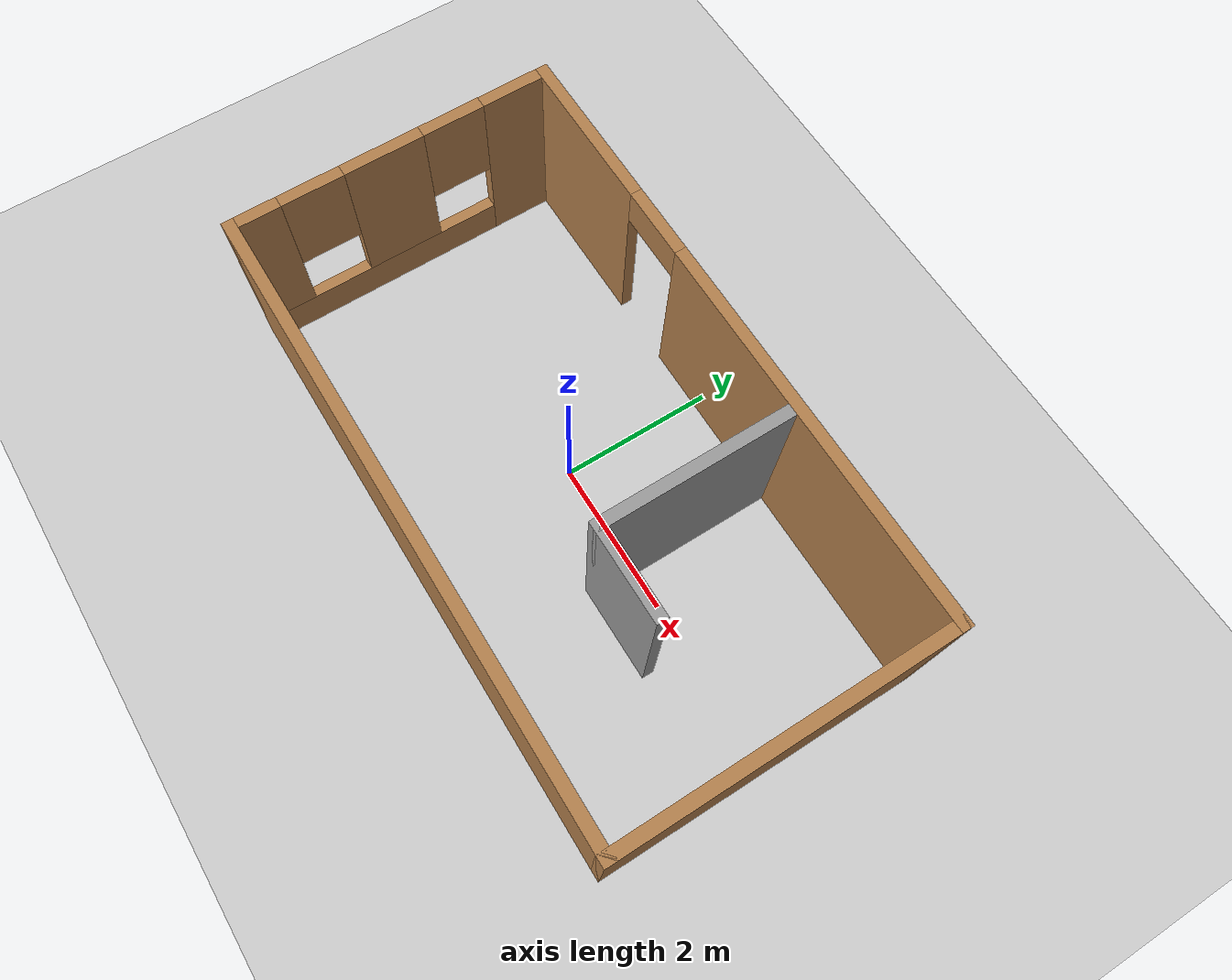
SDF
<sdf version='1.4'>
  <world name='default'>
    <!-- A global light source -->
    <include>
      <uri>model://sun</uri>
    </include>

    <!-- A ground plane -->
    <include>
      <uri>model://ground_plane</uri>
    </include>

    <physics type="ode">
      <real_time_update_rate>1000.0</real_time_update_rate>
      <max_step_size>0.001</max_step_size>
      <real_time_factor>1</real_time_factor>
      <ode>
        <solver>
          <type>quick</type>
          <iters>150</iters>
          <precon_iters>0</precon_iters>
          <sor>1.400000</sor>
          <use_dynamic_moi_rescaling>1</use_dynamic_moi_rescaling>
        </solver>
        <constraints>
          <cfm>0.00001</cfm>
          <erp>0.2</erp>
          <contact_max_correcting_vel>2000.000000</contact_max_correcting_vel>
          <contact_surface_layer>0.01000</contact_surface_layer>
        </constraints>
      </ode>
    </physics>

    <!-- Load world -->
    <include>
      <uri>model://pfm</uri>
    </include>

    <scene>
      <ambient>0.4 0.4 0.4 1</ambient>
      <background>0.7 0.7 0.7 1</background>
      <shadows>true</shadows>
    </scene>

    <gui fullscreen='0'>
      <camera name='user_camera'>
        <pose>0.8 0.0 12.0 0 1.5708 0</pose>
        <view_controller>orbit</view_controller>
      </camera>
    </gui>
  </world>
</sdf>

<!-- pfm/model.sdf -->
<sdf version='1.6'>
  <model name='pfm'>
    <pose frame=''>0.245131 -0.125376 0 0 -0 0</pose>
    <link name='Wall_10'>
      <collision name='Wall_10_Collision'>
        <geometry>
          <box>
            <size>1.25 0.15 2.5</size>
          </box>
        </geometry>
        <pose frame=''>0 0 1.25 0 -0 0</pose>
      </collision>
      <visual name='Wall_10_Visual'>
        <pose frame=''>0 0 1.25 0 -0 0</pose>
        <geometry>
          <box>
            <size>1.25 0.15 2.5</size>
          </box>
        </geometry>
        <material>
          <script>
            <uri>file://media/materials/scripts/gazebo.material</uri>
            <name>Gazebo/Grey</name>
          </script>
          <ambient>1 1 1 1</ambient>
        </material>
      </visual>
      <pose frame=''>1.75396 -0.420681 0 0 -0 0</pose>
    </link>
    <link name='Wall_3'>
      <pose frame=''>-3.925 0 0 0 0 -1.5708</pose>
      <visual name='Wall_3_Visual_0'>
        <pose frame=''>-1.65392 0 1.25 0 -0 0</pose>
        <geometry>
          <box>
            <size>0.942155 0.15 2.5</size>
          </box>
        </geometry>
        <material>
          <script>
            <uri>file://media/materials/scripts/gazebo.material</uri>
            <name>Gazebo/Wood</name>
          </script>
          <ambient>1 1 1 1</ambient>
        </material>
      </visual>
      <collision name='Wall_3_Collision_0'>
        <geometry>
          <box>
            <size>0.942155 0.15 2.5</size>
          </box>
        </geometry>
        <pose frame=''>-1.65392 0 1.25 0 -0 0</pose>
      </collision>
      <visual name='Wall_3_Visual_1'>
        <pose frame=''>0.471078 0 0.25 0 -0 0</pose>
        <geometry>
          <box>
            <size>3.30784 0.15 0.5</size>
          </box>
        </geometry>
        <material>
          <script>
            <uri>file://media/materials/scripts/gazebo.material</uri>
            <name>Gazebo/Wood</name>
          </script>
          <ambient>1 1 1 1</ambient>
        </material>
      </visual>
      <collision name='Wall_3_Collision_1'>
        <geometry>
          <box>
            <size>3.30784 0.15 0.5</size>
          </box>
        </geometry>
        <pose frame=''>0.471078 0 0.25 0 -0 0</pose>
      </collision>
      <visual name='Wall_3_Visual_2'>
        <pose frame=''>0.132323 0 1.5 0 -0 0</pose>
        <geometry>
          <box>
            <size>1.03034 0.15 2</size>
          </box>
        </geometry>
        <material>
          <script>
            <uri>file://media/materials/scripts/gazebo.material</uri>
            <name>Gazebo/Wood</name>
          </script>
          <ambient>1 1 1 1</ambient>
        </material>
      </visual>
      <collision name='Wall_3_Collision_2'>
        <geometry>
          <box>
            <size>1.03034 0.15 2</size>
          </box>
        </geometry>
        <pose frame=''>0.132323 0 1.5 0 -0 0</pose>
      </collision>
      <visual name='Wall_3_Visual_3'>
        <pose frame=''>1.78625 0 1.5 0 -0 0</pose>
        <geometry>
          <box>
            <size>0.67751 0.15 2</size>
          </box>
        </geometry>
        <material>
          <script>
            <uri>file://media/materials/scripts/gazebo.material</uri>
            <name>Gazebo/Wood</name>
          </script>
          <ambient>1 1 1 1</ambient>
        </material>
      </visual>
      <collision name='Wall_3_Collision_3'>
        <geometry>
          <box>
            <size>0.67751 0.15 2</size>
          </box>
        </geometry>
        <pose frame=''>1.78625 0 1.5 0 -0 0</pose>
      </collision>
      <visual name='Wall_3_Visual_4'>
        <pose frame=''>-0.782845 0 1.9 0 -0 0</pose>
        <geometry>
          <box>
            <size>0.8 0.15 1.2</size>
          </box>
        </geometry>
        <material>
          <script>
            <uri>file://media/materials/scripts/gazebo.material</uri>
            <name>Gazebo/Wood</name>
          </script>
          <ambient>1 1 1 1</ambient>
        </material>
      </visual>
      <collision name='Wall_3_Collision_4'>
        <geometry>
          <box>
            <size>0.8 0.15 1.2</size>
          </box>
        </geometry>
        <pose frame=''>-0.782845 0 1.9 0 -0 0</pose>
      </collision>
      <visual name='Wall_3_Visual_5'>
        <pose frame=''>1.04749 0 1.9 0 -0 0</pose>
        <geometry>
          <box>
            <size>0.8 0.15 1.2</size>
          </box>
        </geometry>
        <material>
          <script>
            <uri>file://media/materials/scripts/gazebo.material</uri>
            <name>Gazebo/Wood</name>
          </script>
          <ambient>1 1 1 1</ambient>
        </material>
      </visual>
      <collision name='Wall_3_Collision_5'>
        <geometry>
          <box>
            <size>0.8 0.15 1.2</size>
          </box>
        </geometry>
        <pose frame=''>1.04749 0 1.9 0 -0 0</pose>
      </collision>
    </link>
    <link name='Wall_4'>
      <collision name='Wall_4_Collision'>
        <geometry>
          <box>
            <size>8 0.15 2.5</size>
          </box>
        </geometry>
        <pose frame=''>0 0 1.25 0 -0 0</pose>
      </collision>
      <visual name='Wall_4_Visual'>
        <pose frame=''>0 0 1.25 0 -0 0</pose>
        <geometry>
          <box>
            <size>8 0.15 2.5</size>
          </box>
        </geometry>
        <material>
          <script>
            <uri>file://media/materials/scripts/gazebo.material</uri>
            <name>Gazebo/Wood</name>
          </script>
          <ambient>1 1 1 1</ambient>
        </material>
      </visual>
      <pose frame=''>0 -2.05 0 0 -0 0</pose>
    </link>
    <link name='Wall_5'>
      <collision name='Wall_5_Collision'>
        <geometry>
          <box>
            <size>4.25 0.15 2.5</size>
          </box>
        </geometry>
        <pose frame=''>0 0 1.25 0 -0 0</pose>
      </collision>
      <visual name='Wall_5_Visual'>
        <pose frame=''>0 0 1.25 0 -0 0</pose>
        <geometry>
          <box>
            <size>4.25 0.15 2.5</size>
          </box>
        </geometry>
        <material>
          <script>
            <uri>file://media/materials/scripts/gazebo.material</uri>
            <name>Gazebo/Wood</name>
          </script>
          <ambient>1 1 1 1</ambient>
        </material>
      </visual>
      <pose frame=''>3.925 0 0 0 -0 1.5708</pose>
    </link>
    <link name='Wall_6'>
      <pose frame=''>0 2.05 0 0 -0 3.14159</pose>
      <visual name='Wall_6_Visual_0'>
        <pose frame=''>-1.48943 0 1.25 0 -0 0</pose>
        <geometry>
          <box>
            <size>5.02114 0.15 2.5</size>
          </box>
        </geometry>
        <material>
          <script>
            <uri>file://media/materials/scripts/gazebo.material</uri>
            <name>Gazebo/Wood</name>
          </script>
          <ambient>1 1 1 1</ambient>
        </material>
      </visual>
      <collision name='Wall_6_Collision_0'>
        <geometry>
          <box>
            <size>5.02114 0.15 2.5</size>
          </box>
        </geometry>
        <pose frame=''>-1.48943 0 1.25 0 -0 0</pose>
      </collision>
      <visual name='Wall_6_Visual_1'>
        <pose frame=''>2.96057 0 1.25 0 -0 0</pose>
        <geometry>
          <box>
            <size>2.07886 0.15 2.5</size>
          </box>
        </geometry>
        <material>
          <script>
            <uri>file://media/materials/scripts/gazebo.material</uri>
            <name>Gazebo/Wood</name>
          </script>
          <ambient>1 1 1 1</ambient>
        </material>
      </visual>
      <collision name='Wall_6_Collision_1'>
        <geometry>
          <box>
            <size>2.07886 0.15 2.5</size>
          </box>
        </geometry>
        <pose frame=''>2.96057 0 1.25 0 -0 0</pose>
      </collision>
      <visual name='Wall_6_Visual_2'>
        <pose frame=''>1.47114 0 2.25 0 -0 0</pose>
        <geometry>
          <box>
            <size>0.9 0.15 0.5</size>
          </box>
        </geometry>
        <material>
          <script>
            <uri>file://media/materials/scripts/gazebo.material</uri>
            <name>Gazebo/Wood</name>
          </script>
          <ambient>1 1 1 1</ambient>
        </material>
      </visual>
      <collision name='Wall_6_Collision_2'>
        <geometry>
          <box>
            <size>0.9 0.15 0.5</size>
          </box>
        </geometry>
        <pose frame=''>1.47114 0 2.25 0 -0 0</pose>
      </collision>
    </link>
    <link name='Wall_9'>
      <collision name='Wall_9_Collision'>
        <geometry>
          <box>
            <size>2.5 0.15 2.5</size>
          </box>
        </geometry>
        <pose frame=''>0 0 1.25 0 -0 0</pose>
      </collision>
      <visual name='Wall_9_Visual'>
        <pose frame=''>0 0 1.25 0 -0 0</pose>
        <geometry>
          <box>
            <size>2.5 0.15 2.5</size>
          </box>
        </geometry>
        <material>
          <script>
            <uri>file://media/materials/scripts/gazebo.material</uri>
            <name>Gazebo/Grey</name>
          </script>
          <ambient>1 1 1 1</ambient>
        </material>
      </visual>
      <pose frame=''>1.20396 0.754319 0 0 0 -1.5708</pose>
    </link>
    <static>1</static>
  </model>
</sdf>
